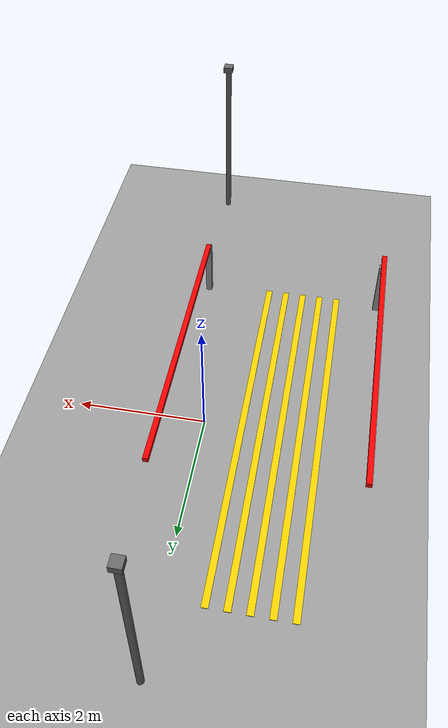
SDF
<sdf version="1.9">
 <world name="empty">
  <physics name="10ms" type="ignored">
   <max_step_size>0.01</max_step_size>
   <real_time_factor>1</real_time_factor>
   <real_time_update_rate>100</real_time_update_rate>
  </physics>
  <plugin name="ignition::gazebo::systems::Physics" filename="ignition-gazebo-physics-system"/>
  <plugin name="ignition::gazebo::systems::UserCommands" filename="ignition-gazebo-user-commands-system"/>
  <plugin name="ignition::gazebo::systems::SceneBroadcaster" filename="ignition-gazebo-scene-broadcaster-system"/>
  <plugin name="ignition::gazebo::systems::Contact" filename="ignition-gazebo-contact-system"/>
  <plugin name="ignition::gazebo::systems::Sensors" filename="ignition-gazebo-sensors-system"/>
  <gravity>0 0 -9.8</gravity>
  <magnetic_field>6e-06 2.3e-05 -4.2e-05</magnetic_field>
  <atmosphere type="adiabatic"/>
  <scene>
   <ambient>0.6 0.6 0.6 1.0</ambient>
   <background>0.53 0.81 0.98 1.0</background>
   <shadows>true</shadows>
  </scene>
  <model name="ground_plane">
   <static>true</static>
   <link name="link">
    <collision name="collision">
     <geometry><plane><normal>0 0 1</normal><size>1000 1000</size></plane></geometry>
    </collision>
    <visual name="visual">
     <geometry><plane><normal>0 0 1</normal><size>1000 1000</size></plane></geometry>
     <material>
      <ambient>0.5 0.5 0.5 1</ambient>
      <diffuse>0.6 0.6 0.6 1</diffuse>
      <specular>0.05 0.05 0.05 1</specular>
     </material>
    </visual>
    <inertial>
     <mass>1</mass>
     <inertia><ixx>1</ixx><ixy>0</ixy><ixz>0</ixz><iyy>1</iyy><iyz>0</iyz><izz>1</izz></inertia>
    </inertial>
   </link>
  </model>
  <model name="yellow_crosswalk">
   <static>true</static>
   <pose>0 0 0.1 0 -0 0</pose>
   <link name="link">
    <visual name="stripe_2">
     <pose>-1.2 0 0 0 0 0</pose>
     <geometry><box><size>0.1 6 0.01</size></box></geometry>
     <material><ambient>1 0.8 0 1</ambient><diffuse>1 0.8 0 1</diffuse></material>
    </visual>
    <visual name="stripe_3">
     <pose>-1.5 0 0 0 0 0</pose>
     <geometry><box><size>0.1 6 0.01</size></box></geometry>
     <material><ambient>1 0.8 0 1</ambient><diffuse>1 0.8 0 1</diffuse></material>
    </visual>
    <visual name="stripe_4">
     <pose>-1.8 0 0 0 0 0</pose>
     <geometry><box><size>0.1 6 0.01</size></box></geometry>
     <material><ambient>1 0.8 0 1</ambient><diffuse>1 0.8 0 1</diffuse></material>
    </visual>
    <visual name="stripe_5">
     <pose>-0.9 0 0 0 0 0</pose>
     <geometry><box><size>0.1 6 0.01</size></box></geometry>
     <material><ambient>1 0.8 0 1</ambient><diffuse>1 0.8 0 1</diffuse></material>
    </visual>
    <visual name="stripe_6">
     <pose>-0.6 0 0 0 0 0</pose>
     <geometry><box><size>0.1 6 0.01</size></box></geometry>
     <material><ambient>1 0.8 0 1</ambient><diffuse>1 0.8 0 1</diffuse></material>
    </visual>
    <inertial>
     <mass>1</mass>
     <inertia><ixx>1</ixx><ixy>0</ixy><ixz>0</ixz><iyy>1</iyy><iyz>0</iyz><izz>1</izz></inertia>
    </inertial>
   </link>
  </model>
  <light name="sun" type="directional">
   <pose>0 0 10 0 -0 0</pose>
   <cast_shadows>false</cast_shadows>
   <intensity>1</intensity>
   <direction>0.5 -0.1 -0.9</direction>
   <diffuse>0.8 0.8 0.8 1</diffuse>
   <specular>0.2 0.2 0.2 1</specular>
   <attenuation>
    <range>1000</range>
    <linear>0.01</linear>
    <constant>0.90000000000000002</constant>
    <quadratic>0.001</quadratic>
   </attenuation>
   <spot><inner_angle>0</inner_angle><outer_angle>0</outer_angle><falloff>0</falloff></spot>
  </light>
  <model name="infrastructure_camera">
   <static>true</static>
   <pose>0.0 4.0 3.0 0 0 0</pose>
   <link name="body">
    <visual name="pole">
     <pose>0 0 -1.5 0 0 0</pose>
     <geometry><cylinder><radius>0.05</radius><length>3.0</length></cylinder></geometry>
     <material>
      <ambient>0.4 0.4 0.4 1</ambient>
      <diffuse>0.4 0.4 0.4 1</diffuse>
      <specular>0.1 0.1 0.1 1</specular>
     </material>
     <visibility_flags>1</visibility_flags>
    </visual>
    <visual name="cam_box">
     <geometry><box><size>0.15 0.15 0.1</size></box></geometry>
     <material>
      <ambient>0.4 0.4 0.4 1</ambient>
      <diffuse>0.4 0.4 0.4 1</diffuse>
      <specular>0.1 0.1 0.1 1</specular>
     </material>
     <visibility_flags>1</visibility_flags>
    </visual>
    <sensor name="v2i_camera" type="camera">
     <pose>0 0 0.2 0 0.85 -1.5708</pose>
     <always_on>1</always_on>
     <update_rate>30</update_rate>
     <visualize>true</visualize>
     <topic>camera/image_raw</topic>
     <camera>
      <horizontal_fov>1.3962634</horizontal_fov>
      <image><width>800</width><height>600</height><format>R8G8B8</format></image>
      <clip><near>0.25</near><far>8.0</far></clip>
      <visibility_mask>4294967294</visibility_mask>
     </camera>
    </sensor>
   </link>
  </model>
  <model name="road_camera">
   <static>true</static>
   <pose>0.6 -5.5 3.0 0 0 0</pose>
   <link name="body">
    <visual name="pole">
     <pose>0 0 -1.5 0 0 0</pose>
     <geometry><cylinder><radius>0.05</radius><length>3.0</length></cylinder></geometry>
     <material>
      <ambient>0.4 0.4 0.4 1</ambient>
      <diffuse>0.4 0.4 0.4 1</diffuse>
      <specular>0.1 0.1 0.1 1</specular>
     </material>
    </visual>
    <visual name="cam_box">
     <geometry><box><size>0.15 0.15 0.1</size></box></geometry>
     <material>
      <ambient>0.4 0.4 0.4 1</ambient>
      <diffuse>0.4 0.4 0.4 1</diffuse>
      <specular>0.1 0.1 0.1 1</specular>
     </material>
    </visual>
    <sensor name="road_cam" type="camera">
     <pose>0 0 0.2 0 0.6 -1.5708</pose>
     <always_on>1</always_on>
     <update_rate>30</update_rate>
     <visualize>true</visualize>
     <topic>camera/road_raw</topic>
     <camera>
      <horizontal_fov>1.5708</horizontal_fov>
      <image><width>800</width><height>600</height><format>R8G8B8</format></image>
      <clip><near>0.1</near><far>12</far></clip>
     </camera>
    </sensor>
   </link>
  </model>
  <model name="crosswalk_barricade">
   <pose>0.5 -3.0 0 0 0 0</pose>
   <link name="base">
    <pose>0 0 0.5 0 0 0</pose>
    <inertial>
     <mass>5000</mass>
     <inertia><ixx>10417</ixx><ixy>0</ixy><ixz>0</ixz><iyy>10417</iyy><iyz>0</iyz><izz>20833</izz></inertia>
    </inertial>
    <collision name="collision"><geometry><box><size>0.1 0.1 1.0</size></box></geometry></collision>
    <collision name="base_plate">
     <pose>0 0 -0.45 0 0 0</pose>
     <geometry><box><size>1.0 1.0 0.1</size></box></geometry>
    </collision>
    <visual name="visual">
     <geometry><box><size>0.1 0.1 1.0</size></box></geometry>
     <material><ambient>0.6 0.6 0.6 1</ambient><diffuse>0.6 0.6 0.6 1</diffuse></material>
    </visual>
   </link>
   <link name="bar">
    <pose>0 0 1.0 0 0 0</pose>
    <inertial>
     <pose>0 2.25 0 0 0 0</pose>
     <mass>2</mass>
     <inertia><ixx>3.376</ixx><ixy>0</ixy><ixz>0</ixz><iyy>0.001</iyy><iyz>0</iyz><izz>3.376</izz></inertia>
    </inertial>
    <collision name="collision">
     <pose>0 2.25 0 0 0 0</pose>
     <geometry><box><size>0.08 4.5 0.08</size></box></geometry>
    </collision>
    <visual name="visual">
     <pose>0 2.25 0 0 0 0</pose>
     <geometry><box><size>0.08 4.5 0.08</size></box></geometry>
     <material><ambient>1 0 0 1</ambient><diffuse>1 0 0 1</diffuse></material>
    </visual>
   </link>
   <joint name="bar_joint" type="revolute">
    <parent>base</parent>
    <child>bar</child>
    <axis>
     <xyz>0 0 1</xyz>
     <limit><lower>-1.5708</lower><upper>1.5708</upper></limit>
     <dynamics><damping>0.1</damping></dynamics>
    </axis>
   </joint>
   <plugin filename="ignition-gazebo-joint-position-controller-system" name="ignition::gazebo::systems::JointPositionController">
    <joint_name>bar_joint</joint_name>
    <topic>/barricade/joint_angle</topic>
    <p_gain>30000</p_gain>
    <i_gain>0.1</i_gain>
    <d_gain>1200.0</d_gain>
    <i_max>10</i_max>
    <i_min>-10</i_min>
    <cmd_max>50000</cmd_max>
    <cmd_min>-50000</cmd_min>
   </plugin>
  </model>
  <model name="crosswalk_barricade_2">
   <pose>-2.5 -3.0 0 0 0 0</pose>
   <link name="base">
    <pose>0 0 0.5 0 0 0</pose>
    <inertial>
     <mass>5000</mass>
     <inertia><ixx>10417</ixx><ixy>0</ixy><ixz>0</ixz><iyy>10417</iyy><iyz>0</iyz><izz>20833</izz></inertia>
    </inertial>
    <collision name="collision"><geometry><box><size>0.1 0.1 1.0</size></box></geometry></collision>
    <collision name="base_plate">
     <pose>0 0 -0.45 0 0 0</pose>
     <geometry><box><size>1.0 1.0 0.1</size></box></geometry>
    </collision>
    <visual name="visual">
     <geometry><box><size>0.1 0.1 1.0</size></box></geometry>
     <material><ambient>0.6 0.6 0.6 1</ambient><diffuse>0.6 0.6 0.6 1</diffuse></material>
    </visual>
   </link>
   <link name="bar">
    <pose>0 0 1.2 0 0 0</pose>
    <inertial>
     <pose>0 2.25 0 0 0 0</pose>
     <mass>2</mass>
     <inertia><ixx>3.376</ixx><ixy>0</ixy><ixz>0</ixz><iyy>0.001</iyy><iyz>0</iyz><izz>3.376</izz></inertia>
    </inertial>
    <collision name="collision">
     <pose>0 2.25 0 0 0 0</pose>
     <geometry><box><size>0.08 4.5 0.08</size></box></geometry>
    </collision>
    <visual name="visual">
     <pose>0 2.25 0 0 0 0</pose>
     <geometry><box><size>0.08 4.5 0.08</size></box></geometry>
     <material><ambient>1 0 0 1</ambient><diffuse>1 0 0 1</diffuse></material>
    </visual>
   </link>
   <joint name="bar_joint" type="revolute">
    <parent>base</parent>
    <child>bar</child>
    <axis>
     <xyz>0 0 -1</xyz>
     <limit><lower>-1.5708</lower><upper>1.5708</upper></limit>
     <dynamics><damping>0.1</damping></dynamics>
    </axis>
   </joint>
   <plugin filename="ignition-gazebo-joint-position-controller-system" name="ignition::gazebo::systems::JointPositionController">
    <joint_name>bar_joint</joint_name>
    <topic>/barricade/joint_angle</topic>
    <p_gain>30000</p_gain>
    <i_gain>0.1</i_gain>
    <d_gain>1200.0</d_gain>
    <i_max>10</i_max>
    <i_min>-10</i_min>
    <cmd_max>50000</cmd_max>
    <cmd_min>-50000</cmd_min>
   </plugin>
  </model>
 </world>
</sdf>
